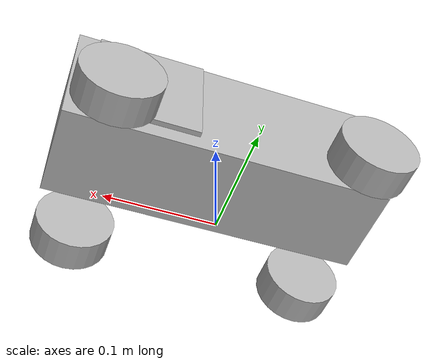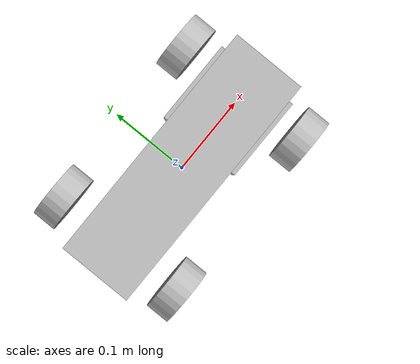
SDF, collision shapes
<sdf version="1.8">
  <model name="MR-Buggy3">
    <pose>0 0 .04 0 0 0</pose>
    <self_collide>false</self_collide>
    <static>false</static>
    <link name="MR-Buggy3/Base">
      <inertial>
        <pose>0 0 0 0 0 0</pose>
        <mass>3.0</mass>
        <inertia>
          <ixx>0.0054</ixx>
          <ixy>0</ixy>
          <ixz>0</ixz>
          <iyy>0.0252</iyy>
          <iyz>0</iyz>
          <izz>0.0252</izz>
        </inertia>
      </inertial>
      <visual name="MR-Buggy3/BaseVisual">
        <pose>.1371 0 -.0115 -0.018 0 1.5707</pose>
        <geometry>
          <mesh>
            <uri>/home/ingejohan/Workspaces/ros2_cpp_ws/src/udemy_ros2_pkg/models/RC/BaseReduced.dae</uri>
          </mesh>
        </geometry>
      </visual>
      <visual name="MR-Buggy3/TopVisual">
        <pose>.1371 0 -.0115 -0.018 0 1.5707</pose>
        <geometry>
          <mesh>
            <uri>/home/ingejohan/Workspaces/ros2_cpp_ws/src/udemy_ros2_pkg/models/RC/TopReduced.dae</uri>
          </mesh>
        </geometry>
      </visual>
      <collision name="MR-Buggy3/BaseCollision">
        <pose>0 0 .06 0 0 0</pose>
        <geometry>
          <box>
            <size>.3 .09 .12</size>
          </box>
        </geometry>
      </collision>
      <sensor name="NPUSim/Camera" type="camera">
        <pose>.16 0 .3 0 0.5 0</pose>
        <always_on>1</always_on>
        <update_rate>10</update_rate>
        <camera>
          <horizontal_fov>1.5</horizontal_fov>
          <image>
            <width>300</width>
            <height>300</height>
            <format>R8G8B8</format>
          </image>
          <clip>
            <near>0.1</near>
            <far>1000</far>
          </clip>
        </camera>
        <topic>NPU/image_sim</topic>
        <enable_metrics>true</enable_metrics>
      </sensor>
    </link>
    <link name="MR-Buggy3/FrontRightWheel">
      <pose relative_to="MR-Buggy3/FrontRightWheelJoint">0 0 0 0 0 0</pose>
      <inertial>
        <mass>.05</mass>
        <inertia>
          <ixx>0.00003331</ixx>
          <ixy>0</ixy>
          <ixz>0</ixz>
          <iyy>0.0000204</iyy>
          <iyz>0</iyz>
          <izz>0.0000204</izz>
        </inertia>
      </inertial>
      <gravity>true</gravity>
      <velocity_decay/>
      <visual name="MR-Buggy3/FrontRightWheelVisual">
        <pose>0 0 0 0 0 0</pose>
        <geometry>
          <mesh>
            <uri>/home/ingejohan/Workspaces/ros2_cpp_ws/src/udemy_ros2_pkg/models/RC/Wheel.dae</uri>
          </mesh>
        </geometry>
      </visual>
      <collision name="MR-Buggy3/FrontRightWheelCollision">
        <pose>0 .015 0 -1.5707 0 0</pose>
        <geometry>
          <cylinder>
            <length>0.03</length>
            <radius>0.0365</radius>
          </cylinder>
        </geometry>
        <surface>
          <friction>
            <ode>
              <mu>0.5</mu>
              <mu2>1.0</mu2>
              <fdir1>0 0 1</fdir1>
            </ode>
          </friction>
        </surface>
      </collision>
    </link>
    <link name="MR-Buggy3/FrontRightWheelSteering">
      <pose relative_to="MR-Buggy3/FrontRightWheelSteeringJoint">0 0 0 0 0 0</pose>
      <inertial>
        <mass>0.005</mass>
        <inertia>
          <ixx>0.0000018</ixx>
          <iyy>0.0000018</iyy>
          <izz>0.0000018</izz>
        </inertia>
      </inertial>
    </link>
    <link name="MR-Buggy3/FrontLeftWheel">
      <pose relative_to="MR-Buggy3/FrontLeftWheelJoint">0 0 0 0 0 0</pose>
      <inertial>
        <mass>.05</mass>
        <inertia>
          <ixx>0.00003331</ixx>
          <ixy>0</ixy>
          <ixz>0</ixz>
          <iyy>0.0000204</iyy>
          <iyz>0</iyz>
          <izz>0.0000204</izz>
        </inertia>
      </inertial>
      <gravity>true</gravity>
      <velocity_decay/>
      <visual name="MR-Buggy3/FrontLeftWheelVisual">
        <pose>0 0 0 0 0 3.14159</pose>
        <geometry>
          <mesh>
            <uri>/home/ingejohan/Workspaces/ros2_cpp_ws/src/udemy_ros2_pkg/models/RC/Wheel.dae</uri>
          </mesh>
        </geometry>
      </visual>
      <collision name="MR-Buggy3/FrontLeftWheelCollision">
        <pose>0 -.015 0 -1.5707 0 0</pose>
        <geometry>
          <cylinder>
            <length>0.03</length>
            <radius>0.0365</radius>
          </cylinder>
        </geometry>
        <surface>
          <friction>
            <ode>
              <mu>0.5</mu>
              <mu2>1.0</mu2>
              <fdir1>0 0 1</fdir1>
            </ode>
          </friction>
        </surface>
      </collision>
    </link>
    <link name="MR-Buggy3/FrontLeftWheelSteering">
      <pose relative_to="MR-Buggy3/FrontLeftWheelSteeringJoint">0 0 0 0 0 0</pose>
      <inertial>
        <mass>0.005</mass>
        <inertia>
          <ixx>0.0000018</ixx>
          <iyy>0.0000018</iyy>
          <izz>0.0000018</izz>
        </inertia>
      </inertial>
    </link>
    <link name="MR-Buggy3/RearRightWheel">
      <pose relative_to="MR-Buggy3/RearRightWheelJoint">0 0 0 0 0 0</pose>
      <inertial>
        <mass>.05</mass>
        <inertia>
          <ixx>0.00003331</ixx>
          <ixy>0</ixy>
          <ixz>0</ixz>
          <iyy>0.0000204</iyy>
          <iyz>0</iyz>
          <izz>0.0000204</izz>
        </inertia>
      </inertial>
      <gravity>true</gravity>
      <velocity_decay/>
      <visual name="MR-Buggy3/RearRightWheelVisual">
        <pose>0 0 0 0 0 0</pose>
        <geometry>
          <mesh>
            <uri>/home/ingejohan/Workspaces/ros2_cpp_ws/src/udemy_ros2_pkg/models/RC/Wheel.dae</uri>
          </mesh>
        </geometry>
      </visual>
      <collision name="MR-Buggy3/RearRightWheelCollision">
        <pose>0 .015 0 -1.5707 0 0</pose>
        <geometry>
          <cylinder>
            <length>0.03</length>
            <radius>0.0365</radius>
          </cylinder>
        </geometry>
        <surface>
          <friction>
            <ode>
              <mu>0.5</mu>
              <mu2>1.0</mu2>
              <fdir1>0 0 1</fdir1>
            </ode>
          </friction>
        </surface>
      </collision>
    </link>
    <link name="MR-Buggy3/RearLeftWheel">
      <pose relative_to="MR-Buggy3/RearLeftWheelJoint">0 0 0 0 0 0</pose>
      <inertial>
        <mass>.05</mass>
        <inertia>
          <ixx>0.00003331</ixx>
          <ixy>0</ixy>
          <ixz>0</ixz>
          <iyy>0.0000204</iyy>
          <iyz>0</iyz>
          <izz>0.0000204</izz>
        </inertia>
      </inertial>
      <gravity>true</gravity>
      <velocity_decay/>
      <visual name="MR-Buggy3/RearLeftWheelVisual">
        <pose>0 0 0 0 0 3.14159</pose>
        <geometry>
          <mesh>
            <uri>/home/ingejohan/Workspaces/ros2_cpp_ws/src/udemy_ros2_pkg/models/RC/Wheel.dae</uri>
          </mesh>
        </geometry>
      </visual>
      <collision name="MR-Buggy3/RearLeftWheelCollision">
        <pose>0 -.015 0 -1.5707 0 0</pose>
        <geometry>
          <cylinder>
            <length>0.03</length>
            <radius>0.0365</radius>
          </cylinder>
        </geometry>
        <surface>
          <friction>
            <ode>
              <mu>0.5</mu>
              <mu2>1.0</mu2>
              <fdir1>0 0 1</fdir1>
            </ode>
          </friction>
        </surface>
      </collision>
    </link>

<!-- Lidar -->
    <link name="lidar_link">
      <pose>0.08 0 0.065 0 0 0</pose>
      <inertial>
        <mass>0.0001</mass>
        <inertia>
          <ixx>0.000166667</ixx>
          <iyy>0.000166667</iyy>
          <izz>0.000166667</izz>
        </inertia>
      </inertial>
      <collision name="collision">
        <geometry>
          <box>
            <size>0.1 0.1 0.1</size>
          </box>
        </geometry>
      </collision>
      <visual name="visual">
        <geometry>
          <box>
            <size>0.1 0.1 0.1</size>
          </box>
        </geometry>
      </visual>

      <sensor name='gpu_lidar' type='gpu_lidar'>
        <topic>lidar</topic>
        <update_rate>10</update_rate>
        <ray>
          <scan>
            <horizontal>
              <samples>80</samples>
              <resolution>1</resolution>
              <min_angle>-1.396263</min_angle>
              <max_angle>1.396263</max_angle>
            </horizontal>
            <vertical>
              <samples>1</samples>
              <resolution>1</resolution>
              <min_angle>0</min_angle>
              <max_angle>0</max_angle>
            </vertical>
          </scan>
          <range>
            <min>0.08</min>
            <max>10.0</max>
            <resolution>0.01</resolution>
          </range>
        </ray>
        <alwaysOn>1</alwaysOn>
        <visualize>true</visualize>
      </sensor>
    </link>
    <static>true</static>

    <joint name='lidar_sensor_joint' type='fixed'>
      <parent>MR-Buggy3/Base</parent>
      <child>lidar_link</child>
    </joint>

<!-- Lidar end -->

    <joint name="MR-Buggy3/FrontRightWheelSteeringJoint" type="revolute">
      <parent>MR-Buggy3/Base</parent>
      <child>MR-Buggy3/FrontRightWheelSteering</child>
      <pose relative_to="MR-Buggy3/Base">.112 -.10 0 0 0 0</pose>
      <axis>
        <xyz>0 0 1</xyz>
        <limit>
          <lower>-0.6</lower>
          <upper>0.6</upper>
          <velocity>1.0</velocity>
          <effort>25</effort>
        </limit>
        <use_parent_model_frame>1</use_parent_model_frame>
      </axis>
    </joint>
    <joint name="MR-Buggy3/FrontRightWheelJoint" type="revolute">
      <parent>MR-Buggy3/FrontRightWheelSteering</parent>
      <child>MR-Buggy3/FrontRightWheel</child>
      <pose relative_to="MR-Buggy3/FrontRightWheelSteeringJoint">0 0 0 0 0 0</pose>
      <axis>
        <xyz>0 1 0</xyz>
        <limit>
          <lower>-1.79769e+308</lower>
          <upper>1.79769e+308</upper>
        </limit>
        <dynamics>
          <spring_reference>0</spring_reference>
          <spring_stiffness>0</spring_stiffness>
        </dynamics>
        <use_parent_model_frame>1</use_parent_model_frame>
      </axis>
    </joint>
    <joint name="MR-Buggy3/FrontLeftWheelSteeringJoint" type="revolute">
      <parent>MR-Buggy3/Base</parent>
      <child>MR-Buggy3/FrontLeftWheelSteering</child>
      <pose relative_to="MR-Buggy3/Base">.112 .10 0 0 0 0</pose>
      <axis>
        <xyz>0 0 1</xyz>
        <limit>
          <lower>-0.6</lower>
          <upper>0.6</upper>
          <velocity>1.0</velocity>
          <effort>25</effort>
        </limit>
        <use_parent_model_frame>1</use_parent_model_frame>
      </axis>
    </joint>
    <joint name="MR-Buggy3/FrontLeftWheelJoint" type="revolute">
      <parent>MR-Buggy3/FrontLeftWheelSteering</parent>
      <child>MR-Buggy3/FrontLeftWheel</child>
      <pose relative_to="MR-Buggy3/FrontLeftWheelSteeringJoint">0 0 0 0 0 0</pose>
      <axis>
        <xyz>0 1 0</xyz>
        <limit>
          <lower>-1.79769e+308</lower>
          <upper>1.79769e+308</upper>
        </limit>
        <dynamics>
          <spring_reference>0</spring_reference>
          <spring_stiffness>0</spring_stiffness>
        </dynamics>
        <use_parent_model_frame>1</use_parent_model_frame>
      </axis>
    </joint>
    <joint name="MR-Buggy3/RearRightWheelJoint" type="revolute">
      <parent>MR-Buggy3/Base</parent>
      <child>MR-Buggy3/RearRightWheel</child>
      <pose relative_to="MR-Buggy3/Base">-.1135 -.10 0 0 0 0</pose>
      <axis>
        <xyz>0 1 0</xyz>
        <limit>
          <lower>-1.79769e+308</lower>
          <upper>1.79769e+308</upper>
        </limit>
        <dynamics>
          <spring_reference>0</spring_reference>
          <spring_stiffness>0</spring_stiffness>
        </dynamics>
        <use_parent_model_frame>1</use_parent_model_frame>
      </axis>
    </joint>
    <joint name="MR-Buggy3/RearLeftWheelJoint" type="revolute">
      <parent>MR-Buggy3/Base</parent>
      <child>MR-Buggy3/RearLeftWheel</child>
      <pose relative_to="MR-Buggy3/Base">-.1135 .10 0 0 0 0</pose>
      <axis>
        <xyz>0 1 0</xyz>
        <limit>
          <lower>-1.79769e+308</lower>
          <upper>1.79769e+308</upper>
        </limit>
        <dynamics>
          <spring_reference>0</spring_reference>
          <spring_stiffness>0</spring_stiffness>
        </dynamics>
        <use_parent_model_frame>1</use_parent_model_frame>
      </axis>
    </joint>
    <plugin
      filename="ignition-gazebo-ackermann-steering-system"
      name="ignition::gazebo::systems::AckermannSteering">
      <left_joint>MR-Buggy3/FrontLeftWheelJoint</left_joint>
      <left_joint>MR-Buggy3/RearLeftWheelJoint</left_joint>
      <right_joint>MR-Buggy3/FrontRightWheelJoint</right_joint>
      <right_joint>MR-Buggy3/FrontRightWheelJoint</right_joint>
      <left_steering_joint>MR-Buggy3/FrontLeftWheelSteeringJoint</left_steering_joint>
      <right_steering_joint>MR-Buggy3/FrontRightWheelSteeringJoint</right_steering_joint>
      <kingpin_width>.18</kingpin_width>
      <steering_limit>0.61</steering_limit>
      <wheel_base>.2255</wheel_base>
      <wheel_separation>.2</wheel_separation>
      <wheel_radius>0.0365</wheel_radius>
      <min_velocity>-100</min_velocity>
      <max_velocity>100</max_velocity>
      <min_acceleration>-50</min_acceleration>
      <max_acceleration>50</max_acceleration>
      <topic>/cmd_vel</topic>
    </plugin>
    <plugin filename="ignition-gazebo6-pose-publisher-system"
        name="gz::sim::systems::PosePublisher">
        <publish_sensor_pose>true</publish_sensor_pose>
        <use_pose_vector_msg>true</use_pose_vector_msg>
        <odom_publish_frequency>50</odom_publish_frequency>
    </plugin>
  </model>
</sdf>
